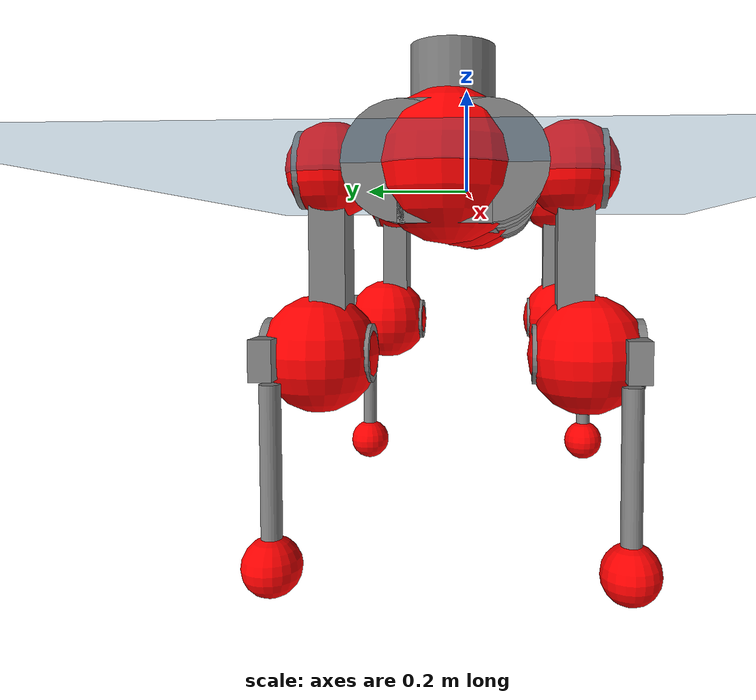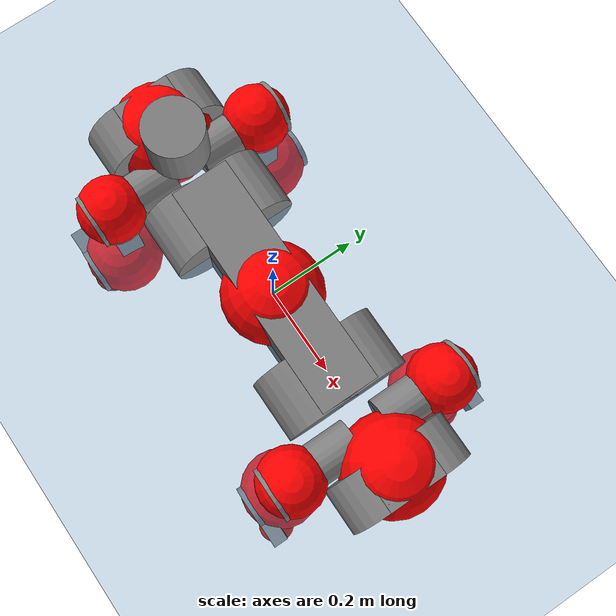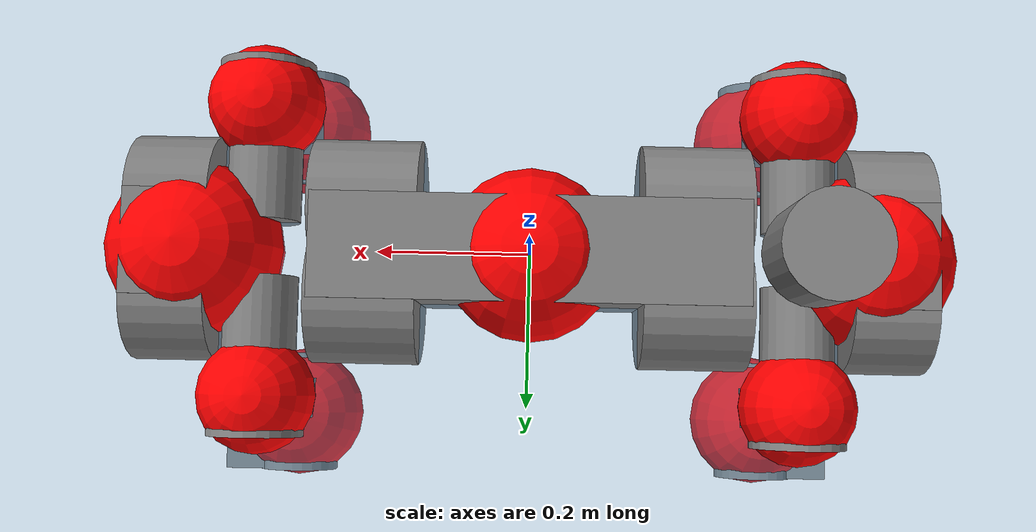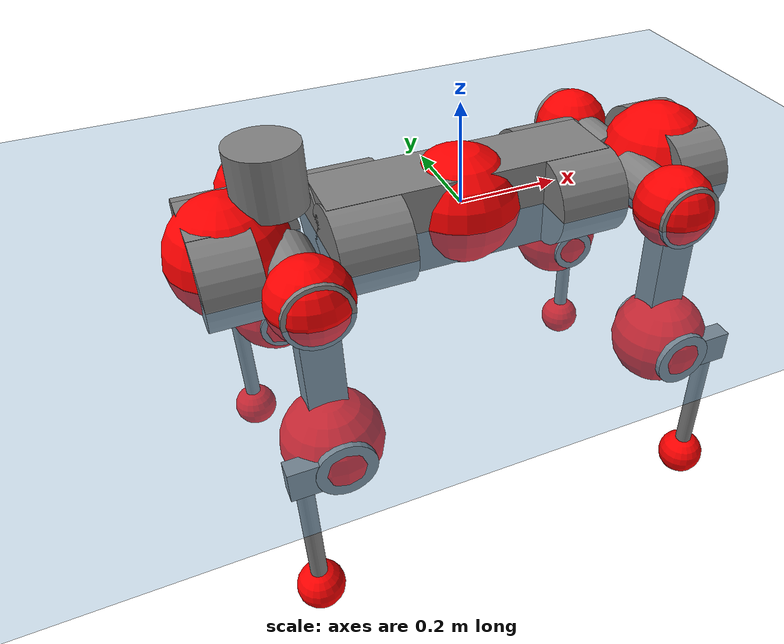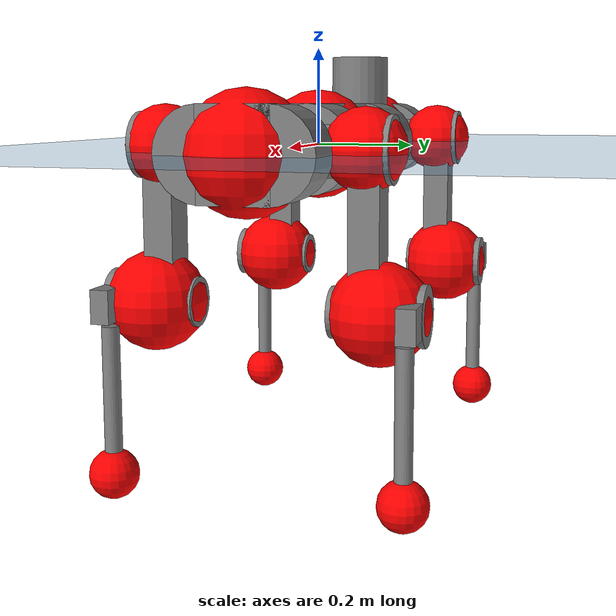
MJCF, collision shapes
<mujoco model="anymal_c">
  <compiler angle="radian" assetdir="assets" balanceinertia="true" inertiafromgeom="false"/>

  <option timestep="0.005" density="1.2" viscosity="2e-05"/>

  <size nkey="1"/>

  <visual>
    <quality shadowsize="8192"/>
    <map shadowclip="0.5"/>
  </visual>

  <default>
    <default class="/">
      <material specular="0" shininess="0.25"/>
      <geom contype="0" conaffinity="0" group="1" solref="-1000 -80"/>
      <site size="0.01 0.005 0.005" group="5"/>
      <general forcelimited="true" forcerange="-80 80" biastype="affine" gainprm="80" biasprm="0 -80 -2"/>
      <default class="anymal_c">
        <joint armature="0.01" damping="0.01" frictionloss="0.1"/>
        <default class="visual">
          <geom type="mesh" group="2"/>
          <default class="visual_zflip"/>
        </default>
        <default class="collision">
          <geom type="cylinder" group="3"/>
          <default class="foot">
            <geom size="0.03 0 0" type="sphere" condim="6" priority="1" friction="0.8 0.02 0.01" solimp="0.015 1 0.03"/>
          </default>
        </default>
      </default>
      <default class="reward_collision_sphere">
        <geom group="5" rgba="1 0 0 1"/>
      </default>
    </default>
  </default>

  <asset>
    <texture type="skybox" colorspace="auto" name="//unnamed_texture_0" builtin="gradient" rgb1="0.95 0.95 0.95" rgb2="0.95 0.95 0.95" width="100" height="600"/>
    <texture type="2d" colorspace="auto" name="texplane" builtin="checker" rgb1="0.345 0.575 0.748" rgb2="0.345 0.575 0.748" markrgb="1 1 1" width="512" height="512"/>
    <texture type="2d" colorspace="linear" name="base" file="base.png"/>
    <texture type="2d" colorspace="linear" name="top_shell" file="top_shell.png"/>
    <texture type="2d" colorspace="linear" name="bottom_shell" file="bottom_shell.png"/>
    <texture type="2d" colorspace="linear" name="remote" file="remote.png"/>
    <texture type="2d" colorspace="linear" name="hatch" file="hatch.png"/>
    <texture type="2d" colorspace="linear" name="handle" file="handle.png"/>
    <texture type="2d" colorspace="linear" name="face" file="face.png"/>
    <texture type="2d" colorspace="linear" name="battery" file="battery.png"/>
    <texture type="2d" colorspace="linear" name="lidar_cage" file="lidar_cage.png"/>
    <texture type="2d" colorspace="linear" name="depth_camera" file="depth_camera.png"/>
    <texture type="2d" colorspace="linear" name="wide_angle_camera" file="wide_angle_camera.png"/>
    <texture type="2d" colorspace="linear" name="lidar" file="lidar.png"/>
    <texture type="2d" colorspace="linear" name="drive" file="drive.png"/>
    <texture type="2d" colorspace="linear" name="hip_l" file="hip_l.png"/>
    <texture type="2d" colorspace="linear" name="shank_l" file="shank_l.png"/>
    <texture type="2d" colorspace="linear" name="foot" file="foot.png"/>
    <texture type="2d" colorspace="linear" name="thigh" file="thigh.png"/>
    <texture type="2d" colorspace="linear" name="shank_r" file="shank_r.png"/>
    <texture type="2d" colorspace="linear" name="hip_r" file="hip_r.png"/>
    <material name="MatPlane" class="/" texture="texplane" texuniform="true" texrepeat="2 2" specular="0.9" shininess="0.5"/>
    <material name="black_plastic" class="/" rgba="0.007 0.007 0.007 1"/>
    <material name="green" class="/" rgba="0.052 0.178 0.033 1"/>
    <material name="red" class="/" rgba="0.178 0.006 0.005 1"/>
    <material name="yellow" class="/" rgba="0.178 0.119 0.006 1"/>
    <material name="lwl" class="/" rgba="0.8 0.8 0.8 1"/>
    <material name="base" class="/" texture="base"/>
    <material name="top_shell" class="/" texture="top_shell"/>
    <material name="bottom_shell" class="/" texture="bottom_shell"/>
    <material name="hip_l" class="/" texture="hip_l"/>
    <material name="thigh" class="/" texture="thigh"/>
    <material name="shank_l" class="/" texture="shank_l"/>
    <material name="foot" class="/" texture="foot"/>
    <material name="hip_r" class="/" texture="hip_r"/>
    <material name="shank" class="/" texture="shank_r"/>
    <material name="hatch" class="/" texture="hatch"/>
    <material name="remote" class="/" texture="remote"/>
    <material name="handle" class="/" texture="handle"/>
    <material name="face" class="/" texture="face"/>
    <material name="depth_camera" class="/" texture="depth_camera"/>
    <material name="wide_angle_camera" class="/" texture="wide_angle_camera"/>
    <material name="battery" class="/" texture="battery"/>
    <material name="lidar_cage" class="/" texture="lidar_cage"/>
    <material name="lidar" class="/" texture="lidar"/>
    <material name="drive" class="/" texture="drive"/>
    <mesh name="base_0" class="/" file="base_0.obj"/>
    <mesh name="base_1" class="/" file="base_1.obj"/>
    <mesh name="base_2" class="/" file="base_2.obj"/>
    <mesh name="base_3" class="/" file="base_3.obj"/>
    <mesh name="base_4" class="/" file="base_4.obj"/>
    <mesh name="base_5" class="/" file="base_5.obj"/>
    <mesh name="top_shell" class="/" file="top_shell.obj"/>
    <mesh name="bottom_shell" class="/" file="bottom_shell.obj"/>
    <mesh name="remote" class="/" file="remote.obj"/>
    <mesh name="handle" class="/" file="handle.obj"/>
    <mesh name="face" class="/" file="face.obj"/>
    <mesh name="wide_angle_camera" class="/" file="wide_angle_camera.obj"/>
    <mesh name="depth_camera" class="/" file="depth_camera.obj"/>
    <mesh name="battery" class="/" file="battery.obj"/>
    <mesh name="lidar_cage" class="/" file="lidar_cage.obj"/>
    <mesh name="lidar" class="/" file="lidar.obj"/>
    <mesh name="drive" class="/" file="drive.obj"/>
    <mesh name="hip_l" class="/" file="hip_l.obj"/>
    <mesh name="thigh" class="/" file="thigh.obj"/>
    <mesh name="shank_l" class="/" file="shank_l.obj"/>
    <mesh name="foot" class="/" file="foot.obj"/>
    <mesh name="hip_r" class="/" file="hip_r.obj"/>
    <mesh name="hatch" class="/" file="hatch.obj"/>
    <mesh name="shank_r" class="/" file="shank_r.obj"/>
  </asset>

  <worldbody>
    <geom name="floor" class="/" size="100 100 0.125" type="plane" group="0" material="MatPlane"/>
    <light name="toplight_shadow" class="/" pos="0 0 5" dir="0.0990148 0.0990148 -0.990148" type="directional" ambient="0.04 0.04 0.04" diffuse="0.55 0.55 0.55" specular="0.12 0.12 0.12"/>
    <light name="toplight_fill" class="/" pos="0 0 5" dir="0.0990148 0.0990148 -0.990148" type="directional" castshadow="false" ambient="0.04 0.04 0.04" diffuse="0.3 0.3 0.3" specular="0.08 0.08 0.08"/>
    <body name="trunk" childclass="anymal_c" pos="-0.000577416 0.000278572 0.000642705" quat="1 4.60132e-07 2.19358e-05 2.29214e-05">
      <inertial pos="0.00273577 -0.000596678 0.0506271" quat="0.50428 0.502203 0.496775 0.496698" mass="16.7119" diaginertia="0.574372 0.302714 0.258819"/>
      <joint name="//unnamed_joint_0" type="free" armature="0" damping="0" frictionloss="0"/>
      <geom name="//unnamed_geom_1" class="visual" material="green" mesh="base_0"/>
      <geom name="//unnamed_geom_2" class="visual" material="yellow" mesh="base_1"/>
      <geom name="//unnamed_geom_3" class="visual" material="red" mesh="base_2"/>
      <geom name="//unnamed_geom_4" class="visual" material="black_plastic" mesh="base_3"/>
      <geom name="//unnamed_geom_5" class="visual" material="lwl" mesh="base_4"/>
      <geom name="//unnamed_geom_6" class="visual" material="base" mesh="base_5"/>
      <geom name="trunk_1" class="collision" size="0.276946 0.0668489 0.0859486" type="box"/>
      <geom name="trunk_2" class="collision" size="0.0859486 0.0692364" pos="0.211609 0.0604031 0" quat="0.707107 0 0.707107 0"/>
      <geom name="trunk_3" class="collision" size="0.0859486 0.0692364" pos="-0.211609 0.0604031 0" quat="0.707107 0 0.707107 0"/>
      <geom name="trunk_4" class="collision" size="0.0859486 0.0692364" pos="0.211609 -0.0604031 0" quat="0.707107 0 0.707107 0"/>
      <geom name="trunk_5" class="collision" size="0.0859486 0.0692364" pos="-0.211609 -0.0604031 0" quat="0.707107 0 0.707107 0"/>
      <geom name="//unnamed_geom_12" class="visual" material="top_shell" mesh="top_shell"/>
      <geom name="//unnamed_geom_13" class="visual" material="bottom_shell" mesh="bottom_shell"/>
      <geom name="//unnamed_geom_14" class="visual" material="remote" mesh="remote"/>
      <geom name="//unnamed_geom_15" class="visual" material="handle" mesh="handle"/>
      <geom name="//unnamed_geom_16" class="visual" pos="0.403274 0 0" quat="1 0 0 0" material="face" mesh="face"/>
      <geom name="trunk_6" class="collision" size="0.0525242 0.0668489 0.0859486" pos="0.456784 0 0" type="box"/>
      <geom name="//unnamed_geom_18" class="collision" size="0.0859486 0.0525242" pos="0.456784 0.0604031 0" quat="0.707107 0 0.707107 0"/>
      <geom name="//unnamed_geom_19" class="collision" size="0.0859486 0.0525242" pos="0.456784 -0.0604031 0" quat="0.707107 0 0.707107 0"/>
      <geom name="//unnamed_geom_20" class="visual" pos="0.449149 0 -0.0304781" quat="0.965926 0 0.258819 0" material="depth_camera" mesh="depth_camera"/>
      <geom name="//unnamed_geom_21" class="visual" pos="0.499106 0 0.0154062" material="wide_angle_camera" mesh="wide_angle_camera"/>
      <geom name="//unnamed_geom_22" class="visual_zflip" pos="-0.403274 0 0" quat="0 0 0 1" material="face" mesh="face"/>
      <geom name="trunk_7" class="collision" size="0.0525242 0.0668489 0.0859486" pos="-0.456784 0 0" quat="0 0 0 1" type="box"/>
      <geom name="//unnamed_geom_24" class="collision" size="0.0859486 0.0525242" pos="-0.456784 -0.0604031 0" quat="0 -0.707107 0 0.707107"/>
      <geom name="//unnamed_geom_25" class="collision" size="0.0859486 0.0525242" pos="-0.456784 0.0604031 0" quat="0 -0.707107 0 0.707107"/>
      <geom name="//unnamed_geom_26" class="visual" pos="-0.449149 0 -0.0304781" quat="0 -0.258819 0 0.965926" material="depth_camera" mesh="depth_camera"/>
      <geom name="//unnamed_geom_27" class="visual_zflip" pos="-0.499106 0 0.0154062" quat="0 0 0 1" material="wide_angle_camera" mesh="wide_angle_camera"/>
      <geom name="//unnamed_geom_28" class="visual" material="battery" mesh="battery"/>
      <geom name="//unnamed_geom_29" class="visual" pos="0 0.0645361 0.0294692" quat="0.683013 -0.183013 0.183013 0.683013" material="depth_camera" mesh="depth_camera"/>
      <geom name="//unnamed_geom_30" class="visual" pos="0 -0.0645361 0.0294692" quat="0.683013 0.183013 0.183013 -0.683013" material="depth_camera" mesh="depth_camera"/>
      <geom name="//unnamed_geom_31" class="visual" pos="-0.354141 0 0.0756416" quat="1 0 0 0" material="lidar_cage" mesh="lidar_cage"/>
      <geom name="trunk_8" class="collision" size="0.0668489 0.0572991" pos="-0.354141 0 0.13739"/>
      <geom name="//unnamed_geom_33" class="visual" pos="-0.354141 -4.32219e-05 0.146343" quat="0.707107 0 0 -0.707107" material="lidar" mesh="lidar"/>
      <geom name="//unnamed_geom_34" class="visual" pos="0.291777 0.0898007 -2.86759e-09" quat="0.258819 0.965926 0 0" material="drive" mesh="drive"/>
      <geom name="//unnamed_geom_35" class="visual" pos="0.291777 -0.0898007 2.86759e-09" quat="0.258819 -0.965926 0 0" material="drive" mesh="drive"/>
      <geom name="//unnamed_geom_36" class="visual" pos="-0.291777 0.0898007 2.86759e-09" quat="0 0 0.965926 -0.258819" material="drive" mesh="drive"/>
      <geom name="//unnamed_geom_37" class="visual" pos="-0.291777 -0.0898007 -2.86759e-09" quat="0 0 -0.965926 -0.258819" material="drive" mesh="drive"/>
      <geom name="//unnamed_geom_38" class="visual" pos="0.112858 0 0.075127" quat="1 0 0 0" material="hatch" mesh="hatch"/>
      <geom name="//unnamed_geom_39" class="reward_collision_sphere" size="0.114598"/>
      <geom name="//unnamed_geom_40" class="reward_collision_sphere" size="0.114598" pos="0.437812 0 0"/>
      <geom name="//unnamed_geom_41" class="reward_collision_sphere" size="0.114598" pos="-0.437812 0 0"/>
      <site name="imu" pos="0.24009 -0.004764 0.0527573" size="0.00954985"/>
      <camera name="track" pos="0 -1.7258 0" quat="0.707107 0.707107 0 0" mode="trackcom"/>
      <camera name="ego_camera" pos="0.437812 0 -0.0411655" quat="-0.5 -0.5 0.5 0.5"/>
      <body name="LF_HIP" pos="0.291982 0.0898099 0.000450292" quat="0.257986 0.966148 0.000856761 -4.25681e-06">
        <inertial pos="0.0557988 -0.0123939 -0.00762334" quat="-0.129458 0.708034 -0.137621 0.680433" mass="2.48379" diaginertia="0.0052312 0.00241728 0.00386566"/>
        <joint name="LF_HAA" pos="0 0 0" axis="0.999998 -0.00161901 0.000788295" range="-0.680556 0.485554" armature="0.00998393" damping="0.0128958" frictionloss="0.0946246"/>
        <geom name="//unnamed_geom_42" class="visual" pos="0 -0.000168688 2.77068e-05" quat="0.258819 -0.965926 0 0" material="hip_l" mesh="hip_l"/>
        <geom name="//unnamed_geom_43" class="visual" pos="0.0582777 -0.0692263 -0.0411974" quat="0.183013 -0.683013 0.683013 0.183013" material="drive" mesh="drive"/>
        <geom name="//unnamed_geom_44" class="collision" size="0.0477492 0.0668489" pos="0.0582777 -0.0103201 -0.00710619" quat="-0.353553 -0.612372 0.612372 -0.353553"/>
        <body name="LF_THIGH" pos="0.0585383 -0.0632293 -0.0416726" quat="0.18302 -0.682892 0.683142 0.182973">
          <inertial pos="0.0302966 -0.00188748 -0.255192" quat="0.993406 -0.00407532 -0.0818933 0.0801286" mass="2.68316" diaginertia="0.0264429 0.0144174 0.00483235"/>
          <joint name="LF_HFE" pos="0 0 0" axis="1 0.000124237 -0.000157478" range="-3.14628 3.18414" armature="0.00979776" damping="0" frictionloss="0.0952832"/>
          <geom name="//unnamed_geom_45" class="visual" pos="0.00218886 3.44914e-06 0" quat="0.707107 0 0 -0.707107" material="thigh" mesh="thigh"/>
          <geom name="//unnamed_geom_46" class="collision" size="0.062074 0.0381994" pos="0.0389166 0 0" quat="0.5 0.5 -0.5 -0.5"/>
          <geom name="//unnamed_geom_47" class="collision" size="0.0358119 0.0286495 0.134953" pos="0.0291875 0 -0.145431" quat="0.707107 0 0 -0.707107" type="box"/>
          <geom name="//unnamed_geom_48" class="visual" pos="0.0975835 0 -0.293304" quat="1 0 0 0" material="drive" mesh="drive"/>
          <geom name="//unnamed_geom_49" class="collision" size="0.0477492 0.0668489" pos="0.0294793 0 -0.293304" quat="0.707107 0 0.707107 0"/>
          <geom name="//unnamed_geom_50" class="reward_collision_sphere" size="0.0763988" pos="0.0243229 0 0"/>
          <body name="LF_SHANK" pos="0.0999466 0.00174628 -0.292703" quat="1 9.44076e-05 4.6243e-06 -3.9659e-05">
            <inertial pos="0.00609366 -0.0524226 -0.0826873" quat="0.992932 -0.115968 -0.00187152 -0.0251926" mass="0.52284" diaginertia="0.00887145 0.00443079 0.00128916"/>
            <joint name="LF_KFE" pos="0 0 0" axis="0.999997 0.00216826 0.00110499" range="-3.1357 3.10562" armature="0.00946149" damping="0.00932099" frictionloss="0.0934432"/>
            <geom name="//unnamed_geom_51" class="visual" pos="0.000713741 0.0038057 0" quat="0.707107 0 0 -0.707107" material="shank_l" mesh="shank_l"/>
            <geom name="LF_kfe_act" class="collision" size="0.0572991 0.0190997" pos="0.0194583 0 0" quat="0.5 0.5 -0.5 -0.5"/>
            <geom name="//unnamed_geom_53" class="collision" size="0.0549107 0.0322307 0.0181447" pos="0.0194583 -0.0496159 0" quat="0.5 0.5 -0.5 -0.5" type="box"/>
            <geom name="//unnamed_geom_54" class="visual" pos="0.0126964 -0.0746657 -0.347817" quat="0.382683 0 0 -0.92388" material="foot" mesh="foot"/>
            <geom name="LF_calf" class="collision" size="0.0167122 0.134893" pos="0.0126966 -0.0758921 -0.173909" quat="0.707107 0 0 -0.707107"/>
            <geom name="LF_foot" class="foot" size="0.0274687" pos="0.0126966 -0.0758921 -0.324662" quat="0.707107 0 0 -0.707107"/>
            <geom name="//unnamed_geom_57" class="reward_collision_sphere" size="0.0954985" pos="-0.0486458 0 0"/>
            <geom name="//unnamed_geom_58" class="reward_collision_sphere" size="0.0477492" pos="0.0126966 -0.0758921 -0.324662"/>
            <site name="LF_foot" class="foot" pos="0.0126966 -0.0758921 -0.324662" quat="0.707107 0 0 -0.707107" size="0.00954985"/>
          </body>
        </body>
      </body>
      <body name="RF_HIP" pos="0.29181 -0.0910455 0.00219707" quat="0.258841 -0.96592 3.17635e-05 -5.77449e-05">
        <inertial pos="0.0559383 0.0134156 -0.00892504" quat="0.129694 0.675164 0.123375 0.71562" mass="2.4789" diaginertia="0.00527883 0.00238678 0.00389359"/>
        <joint name="RF_HAA" pos="0 0 0" axis="0.999999 -0.000928182 0.00049814" range="-0.479178 0.727687" armature="0.00958585" damping="0.0104427" frictionloss="0.0906883"/>
        <geom name="//unnamed_geom_59" class="visual" pos="0 0.000168686 2.77067e-05" quat="0.258819 0.965926 0 0" material="hip_r" mesh="hip_r"/>
        <geom name="//unnamed_geom_60" class="visual" pos="0.0582777 0.0692263 -0.0411974" quat="0.183013 0.683013 0.683013 -0.183013" material="drive" mesh="drive"/>
        <geom name="//unnamed_geom_61" class="collision" size="0.0477492 0.0668489" pos="0.0582777 0.0103201 -0.00710619" quat="-0.353553 0.612372 0.612372 0.353553"/>
        <body name="RF_THIGH" pos="0.0579198 0.0625365 -0.0445219" quat="0.183245 0.683065 0.682907 -0.182979">
          <inertial pos="0.030041 -4.17712e-06 -0.25474" quat="0.991343 -0.00196112 -0.0865542 0.0987057" mass="2.71139" diaginertia="0.0272388 0.0146672 0.00495249"/>
          <joint name="RF_HFE" pos="0 0 0" axis="0.999998 -0.00189672 -0.000566043" stiffness="0.00475017" range="-3.18408 3.16247" armature="0.00904633" damping="0.00965054" frictionloss="0.0933207"/>
          <geom name="//unnamed_geom_62" class="visual" pos="0.00218886 3.44914e-06 0" quat="0.707107 0 0 -0.707107" material="thigh" mesh="thigh"/>
          <geom name="//unnamed_geom_63" class="collision" size="0.062074 0.0381994" pos="0.0389166 0 0" quat="0.5 0.5 0.5 0.5"/>
          <geom name="//unnamed_geom_64" class="collision" size="0.0358119 0.0286495 0.134953" pos="0.0291875 0 -0.145431" quat="0.707107 0 0 0.707107" type="box"/>
          <geom name="//unnamed_geom_65" class="visual" pos="0.0975835 0 -0.293304" quat="1 0 0 0" material="drive" mesh="drive"/>
          <geom name="//unnamed_geom_66" class="collision" size="0.0477492 0.0668489" pos="0.0294793 0 -0.293304" quat="0.707107 0 0.707107 0"/>
          <geom name="//unnamed_geom_67" class="reward_collision_sphere" size="0.0763988" pos="0.0243229 0 0"/>
          <body name="RF_SHANK" pos="0.097431 0.000843455 -0.293537" quat="1 -9.25145e-06 -7.0145e-06 -2.67289e-05">
            <inertial pos="0.0051169 0.0528987 -0.0803983" quat="0.992909 0.116475 -0.00241156 0.0236496" mass="0.490757" diaginertia="0.00848597 0.004412 0.00122363"/>
            <joint name="RF_KFE" pos="0 0 0" axis="0.999999 -0.000751511 0.00134015" range="-3.12271 3.14687" armature="0.00991506" damping="0.00849058" frictionloss="0.0951412"/>
            <geom name="//unnamed_geom_68" class="visual" pos="0.000713737 -0.0038057 0" quat="0.707107 0 0 0.707107" material="shank" mesh="shank_r"/>
            <geom name="RF_kfe_act" class="collision" size="0.0572991 0.0190997" pos="0.0194583 0 0" quat="0.5 0.5 0.5 0.5"/>
            <geom name="//unnamed_geom_70" class="collision" size="0.0549107 0.0322307 0.0181447" pos="0.0194583 0.0496159 0" quat="0.5 0.5 0.5 0.5" type="box"/>
            <geom name="//unnamed_geom_71" class="visual" pos="0.0126967 0.0746657 -0.347817" quat="0.382683 0 0 0.92388" material="foot" mesh="foot"/>
            <geom name="RF_calf" class="collision" size="0.0167122 0.134893" pos="0.0126966 0.0758921 -0.173909" quat="0.707107 0 0 0.707107"/>
            <geom name="RF_foot" class="foot" size="0.028154" pos="0.0126966 0.0758921 -0.324662" quat="0.707107 0 0 0.707107"/>
            <geom name="//unnamed_geom_74" class="reward_collision_sphere" size="0.0954985" pos="-0.0486458 0 0"/>
            <geom name="//unnamed_geom_75" class="reward_collision_sphere" size="0.0477492" pos="0.0126966 0.0758921 -0.324662"/>
            <site name="RF_foot" class="foot" pos="0.0126966 0.0758921 -0.324662" quat="0.707107 0 0 0.707107" size="0.00954985"/>
          </body>
        </body>
      </body>
      <body name="LH_HIP" pos="-0.291603 0.0907528 -0.00126133" quat="0.000347201 -8.9215e-05 0.965918 -0.258848">
        <inertial pos="0.0549658 0.0124306 -0.0104891" quat="0.134015 0.678419 0.127376 0.71103" mass="2.46516" diaginertia="0.00517963 0.00233205 0.00380216"/>
        <joint name="LH_HAA" pos="0 0 0" axis="0.999999 0.00112978 0.00100327" stiffness="0.000549967" range="-0.447642 0.760378" armature="0.00949352" damping="0.00894011" frictionloss="0.104341"/>
        <geom name="//unnamed_geom_76" class="visual" pos="0 0.000168686 2.77067e-05" quat="-0.258819 -0.965926 0 0" material="hip_r" mesh="hip_r"/>
        <geom name="//unnamed_geom_77" class="visual" pos="0.0582777 0.0692263 -0.0411974" quat="0.183013 0.683013 0.683013 -0.183013" material="drive" mesh="drive"/>
        <geom name="//unnamed_geom_78" class="collision" size="0.0477492 0.0668489" pos="0.0582777 0.0103201 -0.00710619" quat="-0.353553 0.612372 0.612372 0.353553"/>
        <body name="LH_THIGH" pos="0.0577217 0.0630588 -0.0436747" quat="0.18313 0.682938 0.68307 -0.182958">
          <inertial pos="0.0283336 0.000173177 -0.255011" quat="0.991778 -0.00460651 -0.0889576 0.09188" mass="2.64538" diaginertia="0.0253714 0.0141038 0.00465812"/>
          <joint name="LH_HFE" pos="0 0 0" axis="0.999949 0.009859 -0.00214566" stiffness="0.000819811" range="-3.17919 3.14706" armature="0.00908061" damping="0.00322804" frictionloss="0.0971084"/>
          <geom name="//unnamed_geom_79" class="visual" pos="0.00218886 3.44914e-06 0" quat="0.707107 0 0 -0.707107" material="thigh" mesh="thigh"/>
          <geom name="//unnamed_geom_80" class="collision" size="0.062074 0.0381994" pos="0.0389166 0 0" quat="0.5 0.5 -0.5 -0.5"/>
          <geom name="//unnamed_geom_81" class="collision" size="0.0358119 0.0286495 0.134953" pos="0.0291875 0 -0.145431" quat="0.707107 0 0 -0.707107" type="box"/>
          <geom name="//unnamed_geom_82" class="visual" pos="0.0975835 0 -0.293304" quat="1 0 0 0" material="drive" mesh="drive"/>
          <geom name="//unnamed_geom_83" class="collision" size="0.0477492 0.0668489" pos="0.0294793 0 -0.293304" quat="0.707107 0 0.707107 0"/>
          <geom name="//unnamed_geom_84" class="reward_collision_sphere" size="0.0763988" pos="0.0243229 0 0"/>
          <body name="LH_SHANK" pos="0.0978161 -0.00153245 -0.294537" quat="1 0.000309365 -0.000365976 -2.68989e-05">
            <inertial pos="0.00497384 0.0528453 -0.0827642" quat="0.99262 0.117377 -0.00417531 0.0301727" mass="0.508276" diaginertia="0.00885188 0.00437317 0.00131107"/>
            <joint name="LH_KFE" pos="0 0 0" axis="0.999998 -0.00085019 -0.0016203" range="-3.16332 3.13938" armature="0.00984627" damping="0.00935064" frictionloss="0.0943685"/>
            <geom name="//unnamed_geom_85" class="visual" pos="0.000713737 -0.0038057 0" quat="-0.707107 0 0 -0.707107" material="shank" mesh="shank_r"/>
            <geom name="LH_kfe_act" class="collision" size="0.0572991 0.0190997" pos="0.0194583 0 0" quat="0.5 0.5 -0.5 -0.5"/>
            <geom name="//unnamed_geom_87" class="collision" size="0.0549107 0.0322307 0.0181447" pos="0.0194583 0.0496159 0" quat="0.5 0.5 -0.5 -0.5" type="box"/>
            <geom name="//unnamed_geom_88" class="visual" pos="0.0126967 0.0746657 -0.347817" quat="-0.382683 0 0 -0.92388" material="foot" mesh="foot"/>
            <geom name="LH_calf" class="collision" size="0.0167122 0.134893" pos="0.0126966 0.0758921 -0.173909" quat="0.707107 0 0 -0.707107"/>
            <geom name="LH_foot" class="foot" size="0.0314074" pos="0.0126966 0.0758921 -0.324662" quat="0.707107 0 0 -0.707107"/>
            <geom name="//unnamed_geom_91" class="reward_collision_sphere" size="0.0954985" pos="-0.0486458 0 0"/>
            <geom name="//unnamed_geom_92" class="reward_collision_sphere" size="0.0477492" pos="0.0126966 0.0758921 -0.324662"/>
            <site name="LH_foot" class="foot" pos="0.0126966 0.0758921 -0.324662" quat="0.707107 0 0 -0.707107" size="0.00954985"/>
          </body>
        </body>
      </body>
      <body name="RH_HIP" pos="-0.291686 -0.0882957 0.000307985" quat="-0.000202781 -3.32473e-05 -0.966066 -0.258297">
        <inertial pos="0.0548511 -0.0115631 -0.009375" quat="-0.128108 0.709863 -0.135075 0.679292" mass="2.32579" diaginertia="0.00495759 0.00229126 0.00368613"/>
        <joint name="RH_HAA" pos="0 0 0" axis="0.999986 0.000807622 0.00514984" range="-0.742733 0.468718" armature="0.00973517" damping="0.00192461" frictionloss="0.0906319"/>
        <geom name="//unnamed_geom_93" class="visual" pos="0 -0.000168688 2.77068e-05" quat="-0.258819 0.965926 0 0" material="hip_l" mesh="hip_l"/>
        <geom name="//unnamed_geom_94" class="visual" pos="0.0582777 -0.0692263 -0.0411974" quat="-0.183013 0.683013 -0.683013 -0.183013" material="drive" mesh="drive"/>
        <geom name="//unnamed_geom_95" class="collision" size="0.0477492 0.0668489" pos="0.0582777 -0.0103201 -0.00710619" quat="0.353553 0.612372 -0.612372 0.353553"/>
        <body name="RH_THIGH" pos="0.0577639 -0.0621841 -0.0412798" quat="-0.18305 0.682949 -0.683085 -0.182944">
          <inertial pos="0.0303673 0.000486206 -0.252736" quat="0.993205 -0.00481717 -0.0803672 0.0840322" mass="2.58835" diaginertia="0.025663 0.0139711 0.00482443"/>
          <joint name="RH_HFE" pos="0 0 0" axis="0.999979 0.0061394 0.00184825" range="-3.18171 3.18134" armature="0.00948176" damping="0.00685386" frictionloss="0.0890773"/>
          <geom name="//unnamed_geom_96" class="visual" pos="0.00218886 3.44914e-06 0" quat="0.707107 0 0 -0.707107" material="thigh" mesh="thigh"/>
          <geom name="//unnamed_geom_97" class="collision" size="0.062074 0.0381994" pos="0.0389166 0 0" quat="0.5 0.5 0.5 0.5"/>
          <geom name="//unnamed_geom_98" class="collision" size="0.0358119 0.0286495 0.134953" pos="0.0291875 0 -0.145431" quat="0.707107 0 0 0.707107" type="box"/>
          <geom name="//unnamed_geom_99" class="visual" pos="0.0975835 0 -0.293304" quat="1 0 0 0" material="drive" mesh="drive"/>
          <geom name="//unnamed_geom_100" class="collision" size="0.0477492 0.0668489" pos="0.0294793 0 -0.293304" quat="0.707107 0 0.707107 0"/>
          <geom name="//unnamed_geom_101" class="reward_collision_sphere" size="0.0763988" pos="0.0243229 0 0"/>
          <body name="RH_SHANK" pos="0.0991099 -0.00012039 -0.293499" quat="1 -3.17724e-05 4.42883e-05 -0.000152756">
            <inertial pos="0.00437842 -0.0527655 -0.0832718" quat="0.992911 -0.116035 -0.00200655 -0.0256655" mass="0.505213" diaginertia="0.00886916 0.00437401 0.0012942"/>
            <joint name="RH_KFE" pos="0 0 0" axis="0.99996 -0.0048204 -0.00756339" range="-3.12765 3.13034" armature="0.00989709" damping="0" frictionloss="0.0970854"/>
            <geom name="//unnamed_geom_102" class="visual" pos="0.000713741 0.0038057 0" quat="0.707107 0 0 -0.707107" material="shank_l" mesh="shank_l"/>
            <geom name="RH_kfe_act" class="collision" size="0.0572991 0.0190997" pos="0.0194583 0 0" quat="0.5 0.5 0.5 0.5"/>
            <geom name="//unnamed_geom_104" class="collision" size="0.0549107 0.0322307 0.0181447" pos="0.0194583 -0.0496159 0" quat="0.5 0.5 0.5 0.5" type="box"/>
            <geom name="//unnamed_geom_105" class="visual" pos="0.0126964 -0.0746657 -0.347817" quat="0.382683 0 0 -0.92388" material="foot" mesh="foot"/>
            <geom name="RH_calf" class="collision" size="0.0167122 0.134893" pos="0.0126966 -0.0758921 -0.173909" quat="0.707107 0 0 0.707107"/>
            <geom name="RH_foot" class="foot" size="0.0296505" pos="0.0126966 -0.0758921 -0.324662" quat="0.707107 0 0 0.707107"/>
            <geom name="//unnamed_geom_108" class="reward_collision_sphere" size="0.0954985" pos="-0.0486458 0 0"/>
            <geom name="//unnamed_geom_109" class="reward_collision_sphere" size="0.0477492" pos="0.0126966 -0.0758921 -0.324662"/>
            <site name="RH_foot" class="foot" pos="0.0126966 -0.0758921 -0.324662" quat="0.707107 0 0 0.707107" size="0.00954985"/>
          </body>
        </body>
      </body>
    </body>
  </worldbody>

  <contact>
    <pair class="/" geom1="floor" geom2="LF_foot" name="//unnamed_contact_0"/>
    <pair class="/" geom1="floor" geom2="RF_foot" name="//unnamed_contact_1"/>
    <pair class="/" geom1="floor" geom2="LH_foot" name="//unnamed_contact_2"/>
    <pair class="/" geom1="floor" geom2="RH_foot" name="//unnamed_contact_3"/>
  </contact>

  <actuator>
    <general name="LF_HAA" class="/" joint="LF_HAA" forcerange="-74.7891 74.7891" gainprm="77.7709" biasprm="0 -77.7709 -2.0052"/>
    <general name="LF_HFE" class="/" joint="LF_HFE" forcerange="-81.1463 81.1463" gainprm="77.7709" biasprm="0 -77.7709 -2.0052"/>
    <general name="LF_KFE" class="/" joint="LF_KFE" forcerange="-71.8171 71.8171" gainprm="77.7709" biasprm="0 -77.7709 -2.0052"/>
    <general name="RF_HAA" class="/" joint="RF_HAA" forcerange="-78.5081 78.5081" gainprm="77.7709" biasprm="0 -77.7709 -2.0052"/>
    <general name="RF_HFE" class="/" joint="RF_HFE" forcerange="-78.41 78.41" gainprm="77.7709" biasprm="0 -77.7709 -2.0052"/>
    <general name="RF_KFE" class="/" joint="RF_KFE" forcerange="-83.4791 83.4791" gainprm="77.7709" biasprm="0 -77.7709 -2.0052"/>
    <general name="LH_HAA" class="/" joint="LH_HAA" forcerange="-82.7169 82.7169" gainprm="77.7709" biasprm="0 -77.7709 -2.0052"/>
    <general name="LH_HFE" class="/" joint="LH_HFE" forcerange="-75.4003 75.4003" gainprm="77.7709" biasprm="0 -77.7709 -2.0052"/>
    <general name="LH_KFE" class="/" joint="LH_KFE" forcerange="-78.7218 78.7218" gainprm="77.7709" biasprm="0 -77.7709 -2.0052"/>
    <general name="RH_HAA" class="/" joint="RH_HAA" forcerange="-76.1015 76.1015" gainprm="77.7709" biasprm="0 -77.7709 -2.0052"/>
    <general name="RH_HFE" class="/" joint="RH_HFE" forcerange="-70.1262 70.1262" gainprm="77.7709" biasprm="0 -77.7709 -2.0052"/>
    <general name="RH_KFE" class="/" joint="RH_KFE" forcerange="-73.1294 73.1294" gainprm="77.7709" biasprm="0 -77.7709 -2.0052"/>
  </actuator>

  <sensor>
    <gyro site="imu" name="imu_angular_velocity"/>
    <velocimeter site="imu" name="imu_linear_velocity"/>
    <framelinvel objtype="site" objname="LF_foot" name="LF_foot_global_linear_velocity"/>
    <framelinvel objtype="site" objname="RF_foot" name="RF_foot_global_linear_velocity"/>
    <framelinvel objtype="site" objname="LH_foot" name="LH_foot_global_linear_velocity"/>
    <framelinvel objtype="site" objname="RH_foot" name="RH_foot_global_linear_velocity"/>
  </sensor>

  <keyframe>
    <key name="home" qpos="0 0 0.55 1 0 0 0 0 0.4 -0.8 0 -0.4 0.8 0 -0.4 0.8 0 0.4 -0.8"/>
  </keyframe>
</mujoco>
